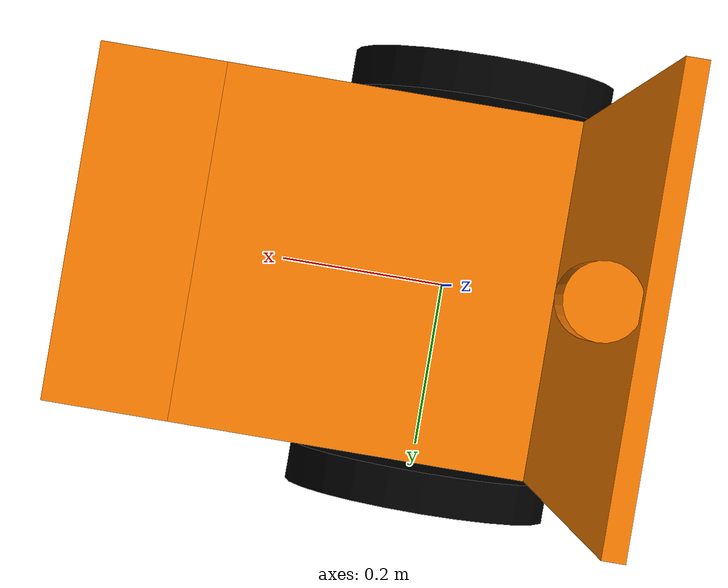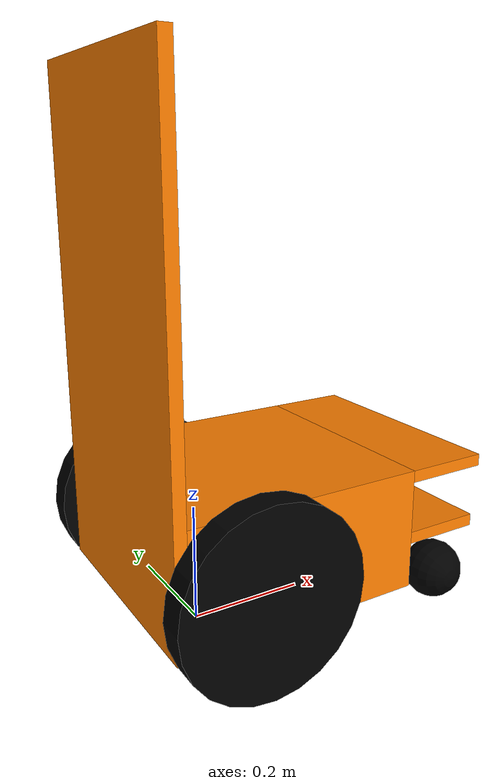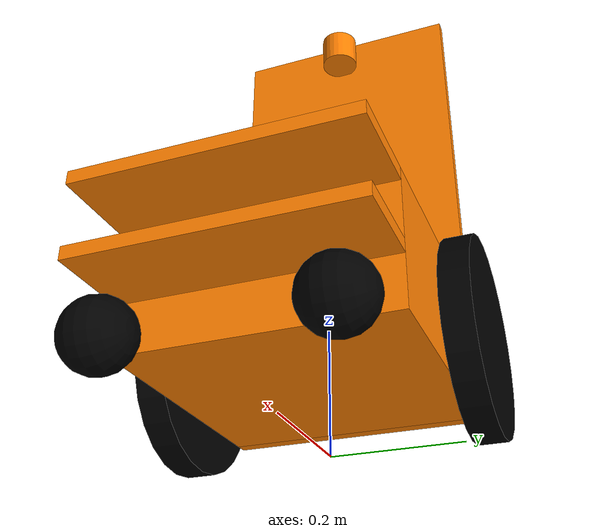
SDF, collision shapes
<?xml version="1.0"?>
<sdf version="1.9">

  <model name="orne_box">

    <link name="base_footprint">

      <inertial>
        <pose>0.091102 0 0.176713 0 -0 0</pose>
        <mass>25.4</mass>
        <inertia>
          <ixx>1.22486</ixx>
          <ixy>0</ixy>
          <ixz>0.016878</ixz>
          <iyy>3.58311</iyy>
          <iyz>0</iyz>
          <izz>3.93825</izz>
        </inertia>
      </inertial>

      <collision name="base_link_collision">
        <pose>0.09 0 0.1715 0 -0 0</pose>
        <geometry>
          <box>
            <size>0.4 0.404 0.202</size>
          </box>
        </geometry>
      <surface>
        <contact><ode/></contact>
        <friction>
          <ode>
            <mu>0.8</mu>
            <mu2>0.8</mu2>
          </ode>
        </friction>
      </surface>
      </collision>

      <collision name="base_link_collision_1">
        <pose>0.36125 0 0.2625 0 -0 0</pose>
        <geometry>
          <box>
            <size>0.1425 0.404 0.02</size>
          </box>
        </geometry>
      <surface>
        <contact><ode/></contact>
        <friction>
          <ode>
            <mu>0.8</mu>
            <mu2>0.8</mu2>
          </ode>
        </friction>
      </surface>
      </collision>

      <collision name="base_link_collision_2">
        <pose>0.35625 0 0.156 0 -0 0</pose>
        <geometry>
          <box>
            <size>0.1325 0.404 0.02</size>
          </box>
        </geometry>
      <surface>
        <contact><ode/></contact>
        <friction>
          <ode>
            <mu>0.8</mu>
            <mu2>0.8</mu2>
          </ode>
        </friction>
      </surface>
      </collision>

      <collision name="base_link_collision_3">
        <pose>-0.12 0 0.4815 0 -0 0</pose>
        <geometry>
          <box>
            <size>0.02 0.404 0.822</size>
          </box>
        </geometry>
      <surface>
        <contact><ode/></contact>
        <friction>
          <ode>
            <mu>0.8</mu>
            <mu2>0.8</mu2>
          </ode>
        </friction>
      </surface>
      </collision>

      <collision name="Livox_Mid360_link_collision">
        <pose>-0.08 0 0.85 0 -0 0</pose>
        <geometry>
          <cylinder>
            <radius>0.033</radius>
            <length>0.06</length>
          </cylinder>
        </geometry>
        <surface>
          <contact><ode/></contact>
          <friction><ode/></friction>
        </surface>
      </collision>

      <visual name="base_link_visual">
        <pose>0.09 0 0.1715 0 -0 0</pose>
        <geometry>
          <box>
            <size>0.4 0.404 0.202</size>
          </box>
        </geometry>

        <material>
          <ambient>1.0 0.5 0.0 1</ambient>
          <diffuse>1.0 0.5 0.0 1</diffuse>
          <specular>0.1 0.1 0.1 1</specular>
          <emissive>0 0 0 1</emissive>
        </material>

      </visual>

      <visual name="base_link_visual_1">
        <pose>0.36125 0 0.2625 0 -0 0</pose>
        <geometry>
          <box>
            <size>0.1425 0.404 0.02</size>
          </box>
        </geometry>

        <material>
          <ambient>1.0 0.5 0.0 1</ambient>
          <diffuse>1.0 0.5 0.0 1</diffuse>
          <specular>0.1 0.1 0.1 1</specular>
          <emissive>0 0 0 1</emissive>
        </material>

      </visual>

      <visual name="base_link_visual_2">
        <pose>0.35625 0 0.156 0 -0 0</pose>
        <geometry>
          <box>
            <size>0.1325 0.404 0.02</size>
          </box>
        </geometry>

        <material>
          <ambient>1.0 0.5 0.0 1</ambient>
          <diffuse>1.0 0.5 0.0 1</diffuse>
          <specular>0.1 0.1 0.1 1</specular>
          <emissive>0 0 0 1</emissive>
        </material>

      </visual>

      <visual name="base_link_visual_3">
        <pose>-0.12 0 0.4815 0 -0 0</pose>
        <geometry>
          <box>
            <size>0.02 0.404 0.822</size>
          </box>
        </geometry>

        <material>
          <ambient>1.0 0.5 0.0 1</ambient>
          <diffuse>1.0 0.5 0.0 1</diffuse>
          <specular>0.1 0.1 0.1 1</specular>
          <emissive>0 0 0 1</emissive>
        </material>

      </visual>

      <visual name="Livox_Mid360_link_visual">
        <pose>-0.08 0 0.85 1.57079 -0 3.14159</pose>
        <geometry>
          <mesh>
            <scale>0.001 0.001 0.001</scale>
            <uri>package://orne_simulator/models/orne_box/meshes/livox_mid360.stl</uri>
          </mesh>
        </geometry>

        <material>
          <ambient>0.0 0.0 1.0 1</ambient>
          <diffuse>0.0 0.0 1.0 1</diffuse>
          <specular>0.1 0.1 0.1 1</specular>
          <emissive>0 0 0 1</emissive>
        </material>

      </visual>

      <visual name="hokuyo_link_visual">
        <pose>0.36 0 0.18 0 -0 0</pose>
        <geometry>
          <box>
            <size>0.05 0.05 0.07</size>
          </box>
        </geometry>

        <material>
          <ambient>0.0 0.0 1.0 1</ambient>
          <diffuse>0.0 0.0 1.0 1</diffuse>
          <specular>0.1 0.1 0.1 1</specular>
          <emissive>0 0 0 1</emissive>
        </material>

      </visual>

      <visual name="zed_camera_center_visual">
        <pose>0 0 0.8 0 -0 0</pose>
        <geometry>
          <box>
            <size>0.033 0.175 0.03</size>
          </box>
        </geometry>

        <material>
          <ambient>0.0 0.0 1.0 1</ambient>
          <diffuse>0.0 0.0 1.0 1</diffuse>
          <specular>0.1 0.1 0.1 1</specular>
          <emissive>0 0 0 1</emissive>
        </material>

      </visual>

      <sensor name="Livox_Mid360" type="gpu_lidar">
        <topic>livox/lidar</topic>
        <update_rate>10</update_rate>
        <lidar>
          <scan>
            <horizontal>
              <samples>3600</samples>
              <resolution>1</resolution>
              <min_angle>-3.14</min_angle>
              <max_angle>3.14</max_angle>
            </horizontal>
            <vertical>
              <samples>59</samples>
              <resolution>1</resolution>
              <min_angle>-0.122</min_angle>
              <max_angle>0.907</max_angle>
            </vertical>
          </scan>
          <range>
            <min>0.1</min>
            <max>40</max>
            <resolution>0.01</resolution>
          </range>
        </lidar>
        <visualize>true</visualize>
        <pose>-0.08 0 0.85 0 -0 0</pose>
        <ignition_frame_id>Livox_Mid360_link</ignition_frame_id>
        <always_on>1</always_on>
      </sensor>

      <sensor name="imu_sensor" type="imu">
        <topic>livox/imu</topic>
        <update_rate>100</update_rate>
        <always_on>1</always_on>
        <visualize>0</visualize>
        <pose>-0.08 0 0.85 0 -0 0</pose>
        <ignition_frame_id>Livox_Mid360_link</ignition_frame_id>
      </sensor>

      <sensor name="hokuyo" type="gpu_lidar">
        <topic>scan</topic>
        <update_rate>40</update_rate>
        <lidar>
          <scan>
            <horizontal>
              <samples>1080</samples>
              <resolution>1</resolution>
              <min_angle>-1.57</min_angle>
              <max_angle>1.57</max_angle>
            </horizontal>
            <vertical>
              <samples>1</samples>
              <resolution>0.1</resolution>
              <min_angle>0</min_angle>
              <max_angle>0</max_angle>
            </vertical>
          </scan>
          <range>
            <min>0.1</min>
            <max>30</max>
            <resolution>0.01</resolution>
          </range>
        </lidar>
        <visualize>true</visualize>
        <pose>0.36 0 0.18 0 -0 0</pose>
        <ignition_frame_id>hokuyo_link</ignition_frame_id>
        <always_on>1</always_on>
      </sensor>

      <sensor name="zed_camera" type="camera">
        <camera>
          <horizontal_fov>1.1690</horizontal_fov>
          <image>
            <width>640</width>
            <height>480</height>
            <format>R8G8B8</format>
          </image>
          <clip>
            <near>0.02</near>
            <far>300</far>
          </clip>
          <distortion>
            <k1>0.130245</k1>
            <k2>-0.171765</k2>
            <k3>0.000000</k3>
            <p1>0.001621</p1>
            <p2>0.001184</p2>
            <center>0.5294 0.4695</center>
          </distortion>
        </camera>
        <always_on>1</always_on>
        <update_rate>30</update_rate>
        <visualize>1</visualize>
        <topic>image_raw</topic>
        <pose>0 0 0.8 0 -0 0</pose>
        <ignition_frame_id>zed_camera_center</ignition_frame_id>
      </sensor>

    </link>

    <joint name="left_caster_ball_joint" type="ball">
      <pose relative_to="base_footprint">0.392 0.15 0.05 0 -0 0</pose>
      <parent>base_footprint</parent>
      <child>left_caster_wheel_link</child>
    </joint>

    <link name="left_caster_wheel_link">
      <pose relative_to="left_caster_ball_joint">0 0 0 1.5708 0 0</pose>
      <inertial>
        <pose>0 0 0 0 -0 0</pose>
        <mass>0.3</mass>
        <inertia>
          <ixx>0.001</ixx>
          <ixy>0</ixy>
          <ixz>0</ixz>
          <iyy>0.001</iyy>
          <iyz>0</iyz>
          <izz>0.001</izz>
        </inertia>
      </inertial>
      <collision name="left_caster_wheel_link_collision">
        <pose>0 0 0 0 -0 0</pose>
        <geometry>
          <sphere>
            <radius>0.05</radius>
          </sphere>
        </geometry>
      <surface>
        <contact><ode/></contact>
        <friction>
          <ode>
            <mu>0.8</mu>
            <mu2>0.8</mu2>
          </ode>
        </friction>
      </surface>
      </collision>
      <visual name="left_caster_wheel_link_visual">
        <pose>0 0 0 0 -0 0</pose>
        <geometry>
          <sphere>
            <radius>0.05</radius>
          </sphere>
        </geometry>

        <material>
          <ambient>0.0 0.0 0.0 1</ambient>
          <diffuse>0.0 0.0 0.0 1</diffuse>
          <specular>0.1 0.1 0.1 1</specular>
          <emissive>0 0 0 1</emissive>
        </material>

      </visual>
    </link>

    <joint name="left_wheel_joint" type="revolute">
      <pose relative_to="base_footprint">0 0.23075 0.152 -1.5708 0 0</pose>
      <parent>base_footprint</parent>
      <child>left_wheel_link</child>
      <axis>
        <xyz>0 0 1</xyz>
        <limit>
          <effort>10.5</effort>
          <velocity>10</velocity>
          <lower>-1e+16</lower>
          <upper>1e+16</upper>
        </limit>
        <dynamics>
          <damping>0.05</damping>
          <friction>0</friction>
          <spring_reference>0</spring_reference>
          <spring_stiffness>0</spring_stiffness>
        </dynamics>
      </axis>
    </joint>

    <link name="left_wheel_link">
      <pose relative_to="left_wheel_joint">0 0 0 0 -0 0</pose>
      <inertial>
        <pose>0 0 0 0 -0 0</pose>
        <mass>0.15</mass>
        <inertia>
          <ixx>0.005</ixx>
          <ixy>0</ixy>
          <ixz>0</ixz>
          <iyy>0.005</iyy>
          <iyz>0</iyz>
          <izz>0.01</izz>
        </inertia>
      </inertial>
      <collision name="left_wheel_link_collision">
        <pose>0 0 0 0 -0 0</pose>
        <geometry>
          <cylinder>
            <length>0.045</length>
            <radius>0.152</radius>
          </cylinder>
        </geometry>
      <surface>
        <contact><ode/></contact>
        <friction>
          <ode>
            <mu>0.8</mu>
            <mu2>0.8</mu2>
          </ode>
        </friction>
      </surface>
      </collision>
      <visual name="left_wheel_link_visual">
        <pose>0 0 0 0 -0 0</pose>
        <geometry>
          <cylinder>
            <length>0.045</length>
            <radius>0.152</radius>
          </cylinder>
        </geometry>

        <material>
          <ambient>0.0 0.0 0.0 1</ambient>
          <diffuse>0.0 0.0 0.0 1</diffuse>
          <specular>0.1 0.1 0.1 1</specular>
          <emissive>0 0 0 1</emissive>
        </material>

      </visual>
    </link>

    <joint name="right_caster_ball_joint" type="ball">
      <pose relative_to="base_footprint">0.392 -0.15 0.05 0 -0 0</pose>
      <parent>base_footprint</parent>
      <child>right_caster_wheel_link</child>
    </joint>

    <link name="right_caster_wheel_link">
      <pose relative_to="right_caster_ball_joint">0 0 0 1.5708 0 0</pose>
      <inertial>
        <pose>0 0 0 0 -0 0</pose>
        <mass>0.3</mass>
        <inertia>
          <ixx>0.001</ixx>
          <ixy>0</ixy>
          <ixz>0</ixz>
          <iyy>0.001</iyy>
          <iyz>0</iyz>
          <izz>0.001</izz>
        </inertia>
      </inertial>
      <collision name="right_caster_wheel_link_collision">
        <pose>0 0 0 0 -0 0</pose>
        <geometry>
          <sphere>
            <radius>0.05</radius>
          </sphere>
        </geometry>
      <surface>
        <contact><ode/></contact>
        <friction>
          <ode>
            <mu>0.8</mu>
            <mu2>0.8</mu2>
          </ode>
        </friction>
      </surface>
      </collision>
      <visual name="right_caster_wheel_link_visual">
        <pose>0 0 0 0 -0 0</pose>
        <geometry>
          <sphere>
            <radius>0.05</radius>
          </sphere>
        </geometry>

        <material>
          <ambient>0.0 0.0 0.0 1</ambient>
          <diffuse>0.0 0.0 0.0 1</diffuse>
          <specular>0.1 0.1 0.1 1</specular>
          <emissive>0 0 0 1</emissive>
        </material>

      </visual>
    </link>

    <joint name="right_wheel_joint" type="revolute">
      <pose relative_to="base_footprint">0 -0.23075 0.152 -1.5708 0 0</pose>
      <parent>base_footprint</parent>
      <child>right_wheel_link</child>
      <axis>
        <xyz>0 0 1</xyz>
        <limit>
          <effort>10.5</effort>
          <velocity>10</velocity>
          <lower>-1e+16</lower>
          <upper>1e+16</upper>
        </limit>
        <dynamics>
          <damping>0.05</damping>
          <friction>0</friction>
          <spring_reference>0</spring_reference>
          <spring_stiffness>0</spring_stiffness>
        </dynamics>
      </axis>
    </joint>

    <link name="right_wheel_link">
      <pose relative_to="right_wheel_joint">0 0 0 0 -0 0</pose>
      <inertial>
        <pose>0 0 0 0 -0 0</pose>
        <mass>0.15</mass>
        <inertia>
          <ixx>0.005</ixx>
          <ixy>0</ixy>
          <ixz>0</ixz>
          <iyy>0.005</iyy>
          <iyz>0</iyz>
          <izz>0.01</izz>
        </inertia>
      </inertial>
      <collision name="right_wheel_link_collision">
        <pose>0 0 0 0 -0 0</pose>
        <geometry>
          <cylinder>
            <length>0.045</length>
            <radius>0.152</radius>
          </cylinder>
        </geometry>
      <surface>
        <contact><ode/></contact>
        <friction>
          <ode>
            <mu>0.8</mu>
            <mu2>0.8</mu2>
          </ode>
        </friction>
      </surface>
      </collision>
      <visual name="right_wheel_link_visual">
        <pose>0 0 0 0 -0 0</pose>
        <geometry>
          <cylinder>
            <length>0.045</length>
            <radius>0.152</radius>
          </cylinder>
        </geometry>

        <material>
          <ambient>0.0 0.0 0.0 1</ambient>
          <diffuse>0.0 0.0 0.0 1</diffuse>
          <specular>0.1 0.1 0.1 1</specular>
          <emissive>0 0 0 1</emissive>
        </material>

      </visual>
    </link>

    <plugin name="ignition::gazebo::systems::DiffDrive" filename="ignition-gazebo-diff-drive-system">
      <left_joint>left_wheel_joint</left_joint>
      <right_joint>right_wheel_joint</right_joint>
      <wheel_separation>0.4615</wheel_separation>
      <wheel_radius>0.145</wheel_radius>
      <odom_publish_frequency>30</odom_publish_frequency>
      <topic>cmd_vel</topic>
      <odom_topic>odom</odom_topic>
      <frame_id>odom</frame_id>
      <child_frame_id>base_footprint</child_frame_id>
    </plugin>

    <static>0</static>

  </model>
</sdf>
